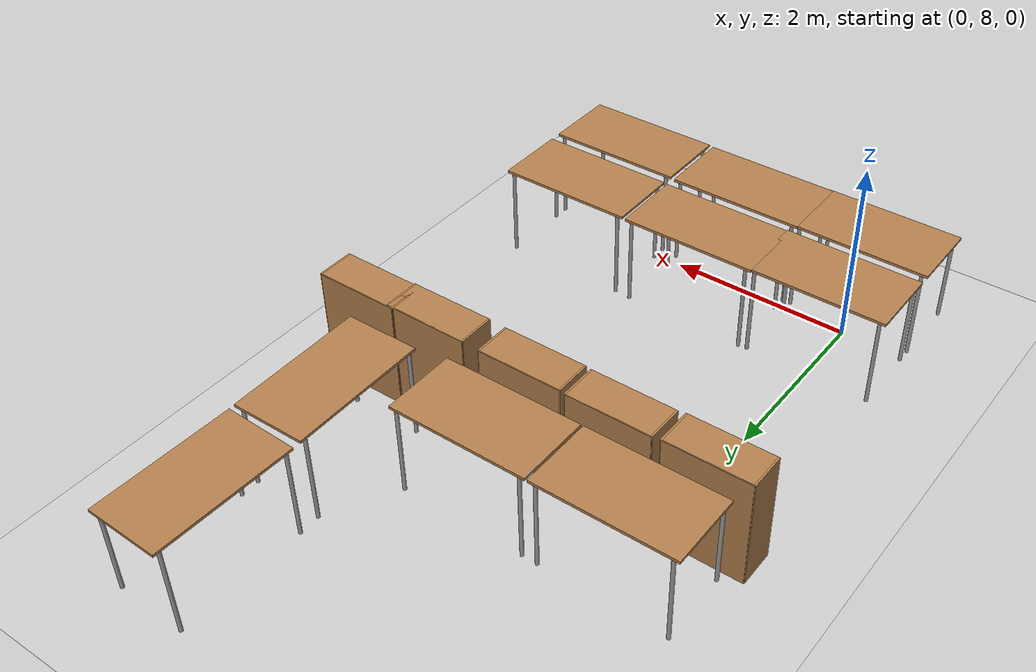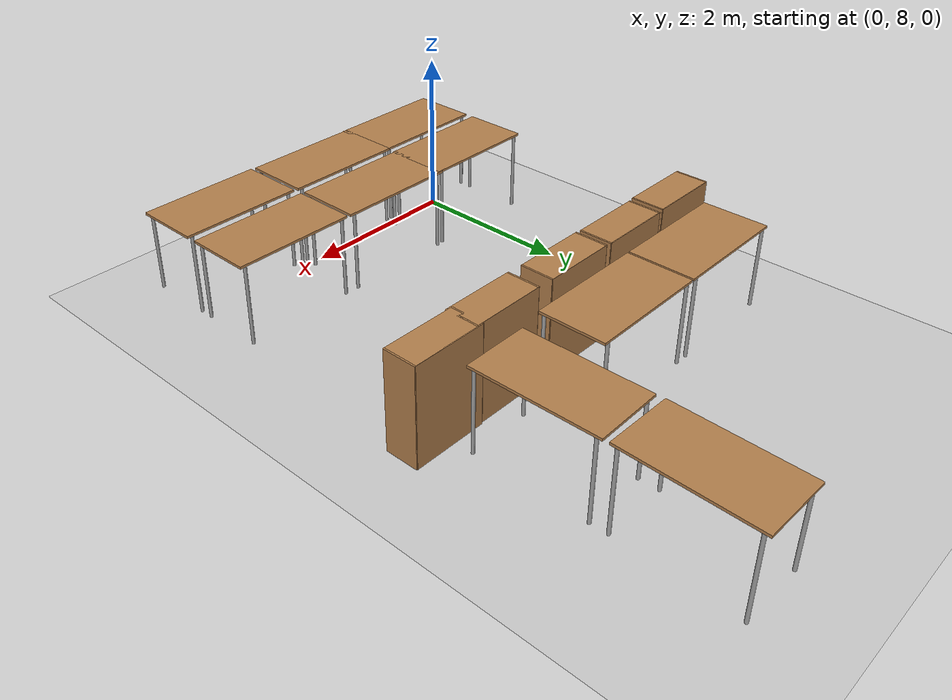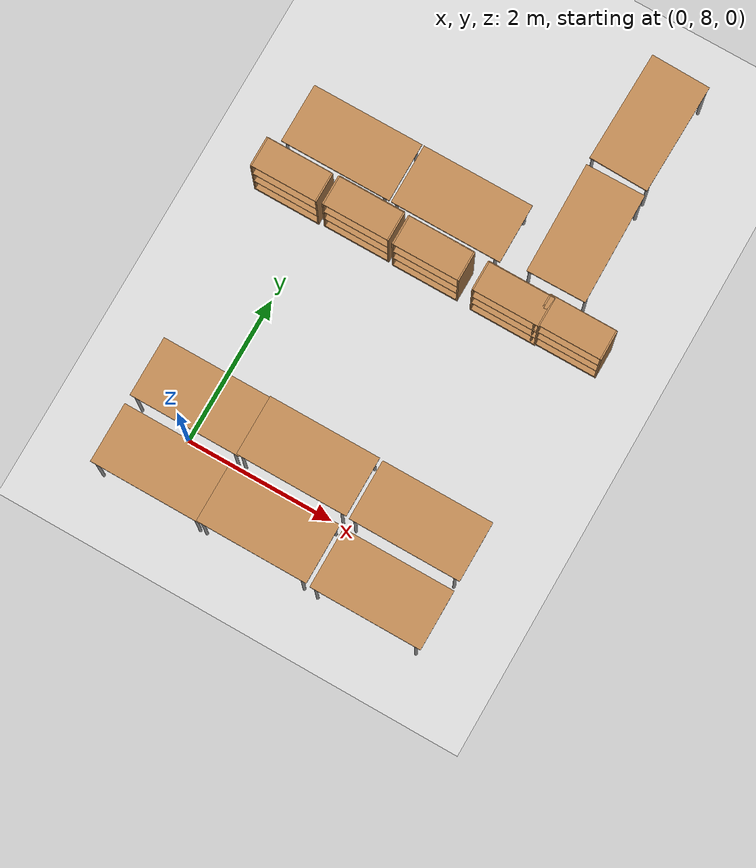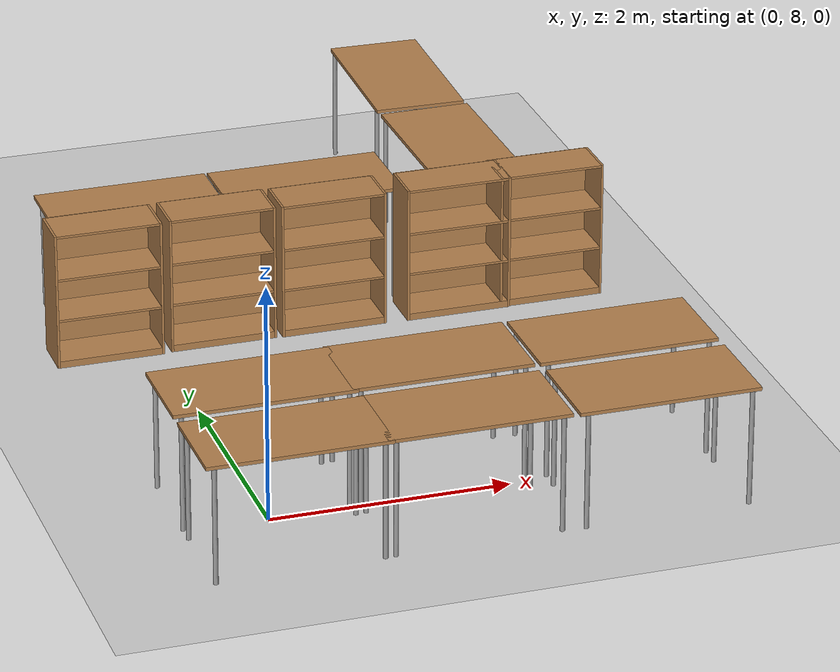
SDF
<sdf version="1.4">
 <world name="default">
  <model name="ground_plane">
   <static>1</static>
   <link name="link">
    <collision name="collision">
     <geometry><plane><normal>0 0 1</normal><size>100 100</size></plane></geometry>
     <surface><friction><ode><mu>100</mu><mu2>50</mu2></ode></friction></surface>
    </collision>
    <visual name="visual">
     <cast_shadows>0</cast_shadows>
     <geometry><plane><normal>0 0 1</normal><size>100 100</size></plane></geometry>
     <material>
      <script><uri>file://media/materials/scripts/gazebo.material</uri><name>Gazebo/Grey</name></script>
     </material>
    </visual>
    <velocity_decay><linear>0</linear><angular>0</angular></velocity_decay>
   </link>
  </model>
  <model name="bookshelf">
   <static>1</static>
   <link name="link">
    <inertial><mass>1</mass></inertial>
    <collision name="back">
     <pose>0 0.005 0.6 0 -0 0</pose>
     <geometry><box><size>0.9 0.01 1.2</size></box></geometry>
    </collision>
    <visual name="visual1">
     <pose>0 0.005 0.6 0 -0 0</pose>
     <geometry><box><size>0.9 0.01 1.2</size></box></geometry>
     <material>
      <script><uri>file://media/materials/scripts/gazebo.material</uri><name>Gazebo/Wood</name></script>
     </material>
    </visual>
    <collision name="left_side">
     <pose>0.45 -0.195 0.6 0 -0 0</pose>
     <geometry><box><size>0.02 0.4 1.2</size></box></geometry>
    </collision>
    <visual name="visual2">
     <pose>0.45 -0.195 0.6 0 -0 0</pose>
     <geometry><box><size>0.02 0.4 1.2</size></box></geometry>
     <material>
      <script><uri>file://media/materials/scripts/gazebo.material</uri><name>Gazebo/Wood</name></script>
     </material>
    </visual>
    <collision name="right_side">
     <pose>-0.45 -0.195 0.6 0 -0 0</pose>
     <geometry><box><size>0.02 0.4 1.2</size></box></geometry>
    </collision>
    <visual name="visual3">
     <pose>-0.45 -0.195 0.6 0 -0 0</pose>
     <geometry><box><size>0.02 0.4 1.2</size></box></geometry>
     <material>
      <script><uri>file://media/materials/scripts/gazebo.material</uri><name>Gazebo/Wood</name></script>
     </material>
    </visual>
    <collision name="bottom">
     <pose>0 -0.195 0.03 0 -0 0</pose>
     <geometry><box><size>0.88 0.4 0.06</size></box></geometry>
    </collision>
    <visual name="visual4">
     <pose>0 -0.195 0.03 0 -0 0</pose>
     <geometry><box><size>0.88 0.4 0.06</size></box></geometry>
     <material>
      <script><uri>file://media/materials/scripts/gazebo.material</uri><name>Gazebo/Wood</name></script>
     </material>
    </visual>
    <collision name="top">
     <pose>0 -0.195 1.19 0 -0 0</pose>
     <geometry><box><size>0.88 0.4 0.02</size></box></geometry>
    </collision>
    <visual name="visual5">
     <pose>0 -0.195 1.19 0 -0 0</pose>
     <geometry><box><size>0.88 0.4 0.02</size></box></geometry>
     <material>
      <script><uri>file://media/materials/scripts/gazebo.material</uri><name>Gazebo/Wood</name></script>
     </material>
    </visual>
    <collision name="low_shelf">
     <pose>0 -0.195 0.43 0 -0 0</pose>
     <geometry><box><size>0.88 0.4 0.02</size></box></geometry>
    </collision>
    <visual name="visual6">
     <pose>0 -0.195 0.43 0 -0 0</pose>
     <geometry><box><size>0.88 0.4 0.02</size></box></geometry>
     <material>
      <script><uri>file://media/materials/scripts/gazebo.material</uri><name>Gazebo/Wood</name></script>
     </material>
    </visual>
    <collision name="high_shelf">
     <pose>0 -0.195 0.8 0 -0 0</pose>
     <geometry><box><size>0.88 0.4 0.02</size></box></geometry>
    </collision>
    <visual name="visual7">
     <pose>0 -0.195 0.8 0 -0 0</pose>
     <geometry><box><size>0.88 0.4 0.02</size></box></geometry>
     <material>
      <script><uri>file://media/materials/scripts/gazebo.material</uri><name>Gazebo/Wood</name></script>
     </material>
    </visual>
    <velocity_decay><linear>0</linear><angular>0</angular></velocity_decay>
   </link>
   <pose>2.61965 11.5036 0 0 -0 0</pose>
  </model>
  <model name="table_16">
   <static>1</static>
   <link name="link">
    <collision name="surface">
     <pose>0 0 1 0 -0 0</pose>
     <geometry><box><size>1.5 0.8 0.03</size></box></geometry>
     <surface><friction><ode><mu>0.6</mu><mu2>0.6</mu2></ode></friction></surface>
    </collision>
    <visual name="visual1">
     <pose>0 0 1 0 -0 0</pose>
     <geometry><box><size>1.5 0.8 0.03</size></box></geometry>
     <material>
      <script><uri>file://media/materials/scripts/gazebo.material</uri><name>Gazebo/Wood</name></script>
     </material>
    </visual>
    <collision name="front_left_leg">
     <pose>0.68 0.38 0.5 0 -0 0</pose>
     <geometry><cylinder><radius>0.02</radius><length>1</length></cylinder></geometry>
    </collision>
    <visual name="front_left_leg">
     <pose>0.68 0.38 0.5 0 -0 0</pose>
     <geometry><cylinder><radius>0.02</radius><length>1</length></cylinder></geometry>
     <material>
      <script><uri>file://media/materials/scripts/gazebo.material</uri><name>Gazebo/Grey</name></script>
     </material>
    </visual>
    <collision name="front_right_leg">
     <pose>0.68 -0.38 0.5 0 -0 0</pose>
     <geometry><cylinder><radius>0.02</radius><length>1</length></cylinder></geometry>
    </collision>
    <visual name="front_right_leg">
     <pose>0.68 -0.38 0.5 0 -0 0</pose>
     <geometry><cylinder><radius>0.02</radius><length>1</length></cylinder></geometry>
     <material>
      <script><uri>file://media/materials/scripts/gazebo.material</uri><name>Gazebo/Grey</name></script>
     </material>
    </visual>
    <collision name="back_right_leg">
     <pose>-0.68 -0.38 0.5 0 -0 0</pose>
     <geometry><cylinder><radius>0.02</radius><length>1</length></cylinder></geometry>
    </collision>
    <visual name="back_right_leg">
     <pose>-0.68 -0.38 0.5 0 -0 0</pose>
     <geometry><cylinder><radius>0.02</radius><length>1</length></cylinder></geometry>
     <material>
      <script><uri>file://media/materials/scripts/gazebo.material</uri><name>Gazebo/Grey</name></script>
     </material>
    </visual>
    <collision name="back_left_leg">
     <pose>-0.68 0.38 0.5 0 -0 0</pose>
     <geometry><cylinder><radius>0.02</radius><length>1</length></cylinder></geometry>
    </collision>
    <visual name="back_left_leg">
     <pose>-0.68 0.38 0.5 0 -0 0</pose>
     <geometry><cylinder><radius>0.02</radius><length>1</length></cylinder></geometry>
     <material>
      <script><uri>file://media/materials/scripts/gazebo.material</uri><name>Gazebo/Grey</name></script>
     </material>
    </visual>
    <velocity_decay><linear>0</linear><angular>0</angular></velocity_decay>
   </link>
   <pose>3 7.49371 0 0 -0 0</pose>
  </model>
  <model name="table_17">
   <static>1</static>
   <link name="link">
    <collision name="surface">
     <pose>0 0 1 0 -0 0</pose>
     <geometry><box><size>1.5 0.8 0.03</size></box></geometry>
     <surface><friction><ode><mu>0.6</mu><mu2>0.6</mu2></ode></friction></surface>
    </collision>
    <visual name="visual1">
     <pose>0 0 1 0 -0 0</pose>
     <geometry><box><size>1.5 0.8 0.03</size></box></geometry>
     <material>
      <script><uri>file://media/materials/scripts/gazebo.material</uri><name>Gazebo/Wood</name></script>
     </material>
    </visual>
    <collision name="front_left_leg">
     <pose>0.68 0.38 0.5 0 -0 0</pose>
     <geometry><cylinder><radius>0.02</radius><length>1</length></cylinder></geometry>
    </collision>
    <visual name="front_left_leg">
     <pose>0.68 0.38 0.5 0 -0 0</pose>
     <geometry><cylinder><radius>0.02</radius><length>1</length></cylinder></geometry>
     <material>
      <script><uri>file://media/materials/scripts/gazebo.material</uri><name>Gazebo/Grey</name></script>
     </material>
    </visual>
    <collision name="front_right_leg">
     <pose>0.68 -0.38 0.5 0 -0 0</pose>
     <geometry><cylinder><radius>0.02</radius><length>1</length></cylinder></geometry>
    </collision>
    <visual name="front_right_leg">
     <pose>0.68 -0.38 0.5 0 -0 0</pose>
     <geometry><cylinder><radius>0.02</radius><length>1</length></cylinder></geometry>
     <material>
      <script><uri>file://media/materials/scripts/gazebo.material</uri><name>Gazebo/Grey</name></script>
     </material>
    </visual>
    <collision name="back_right_leg">
     <pose>-0.68 -0.38 0.5 0 -0 0</pose>
     <geometry><cylinder><radius>0.02</radius><length>1</length></cylinder></geometry>
    </collision>
    <visual name="back_right_leg">
     <pose>-0.68 -0.38 0.5 0 -0 0</pose>
     <geometry><cylinder><radius>0.02</radius><length>1</length></cylinder></geometry>
     <material>
      <script><uri>file://media/materials/scripts/gazebo.material</uri><name>Gazebo/Grey</name></script>
     </material>
    </visual>
    <collision name="back_left_leg">
     <pose>-0.68 0.38 0.5 0 -0 0</pose>
     <geometry><cylinder><radius>0.02</radius><length>1</length></cylinder></geometry>
    </collision>
    <visual name="back_left_leg">
     <pose>-0.68 0.38 0.5 0 -0 0</pose>
     <geometry><cylinder><radius>0.02</radius><length>1</length></cylinder></geometry>
     <material>
      <script><uri>file://media/materials/scripts/gazebo.material</uri><name>Gazebo/Grey</name></script>
     </material>
    </visual>
    <velocity_decay><linear>0</linear><angular>0</angular></velocity_decay>
   </link>
   <pose>1.44687 7.50858 0 0 -0 0</pose>
  </model>
  <model name="table_18">
   <static>1</static>
   <link name="link">
    <collision name="surface">
     <pose>0 0 1 0 -0 0</pose>
     <geometry><box><size>1.5 0.8 0.03</size></box></geometry>
     <surface><friction><ode><mu>0.6</mu><mu2>0.6</mu2></ode></friction></surface>
    </collision>
    <visual name="visual1">
     <pose>0 0 1 0 -0 0</pose>
     <geometry><box><size>1.5 0.8 0.03</size></box></geometry>
     <material>
      <script><uri>file://media/materials/scripts/gazebo.material</uri><name>Gazebo/Wood</name></script>
     </material>
    </visual>
    <collision name="front_left_leg">
     <pose>0.68 0.38 0.5 0 -0 0</pose>
     <geometry><cylinder><radius>0.02</radius><length>1</length></cylinder></geometry>
    </collision>
    <visual name="front_left_leg">
     <pose>0.68 0.38 0.5 0 -0 0</pose>
     <geometry><cylinder><radius>0.02</radius><length>1</length></cylinder></geometry>
     <material>
      <script><uri>file://media/materials/scripts/gazebo.material</uri><name>Gazebo/Grey</name></script>
     </material>
    </visual>
    <collision name="front_right_leg">
     <pose>0.68 -0.38 0.5 0 -0 0</pose>
     <geometry><cylinder><radius>0.02</radius><length>1</length></cylinder></geometry>
    </collision>
    <visual name="front_right_leg">
     <pose>0.68 -0.38 0.5 0 -0 0</pose>
     <geometry><cylinder><radius>0.02</radius><length>1</length></cylinder></geometry>
     <material>
      <script><uri>file://media/materials/scripts/gazebo.material</uri><name>Gazebo/Grey</name></script>
     </material>
    </visual>
    <collision name="back_right_leg">
     <pose>-0.68 -0.38 0.5 0 -0 0</pose>
     <geometry><cylinder><radius>0.02</radius><length>1</length></cylinder></geometry>
    </collision>
    <visual name="back_right_leg">
     <pose>-0.68 -0.38 0.5 0 -0 0</pose>
     <geometry><cylinder><radius>0.02</radius><length>1</length></cylinder></geometry>
     <material>
      <script><uri>file://media/materials/scripts/gazebo.material</uri><name>Gazebo/Grey</name></script>
     </material>
    </visual>
    <collision name="back_left_leg">
     <pose>-0.68 0.38 0.5 0 -0 0</pose>
     <geometry><cylinder><radius>0.02</radius><length>1</length></cylinder></geometry>
    </collision>
    <visual name="back_left_leg">
     <pose>-0.68 0.38 0.5 0 -0 0</pose>
     <geometry><cylinder><radius>0.02</radius><length>1</length></cylinder></geometry>
     <material>
      <script><uri>file://media/materials/scripts/gazebo.material</uri><name>Gazebo/Grey</name></script>
     </material>
    </visual>
    <velocity_decay><linear>0</linear><angular>0</angular></velocity_decay>
   </link>
   <pose>0 7.50114 0 0 -0 0</pose>
  </model>
  <model name="table_19">
   <static>1</static>
   <link name="link">
    <collision name="surface">
     <pose>0 0 1 0 -0 0</pose>
     <geometry><box><size>1.5 0.8 0.03</size></box></geometry>
     <surface><friction><ode><mu>0.6</mu><mu2>0.6</mu2></ode></friction></surface>
    </collision>
    <visual name="visual1">
     <pose>0 0 1 0 -0 0</pose>
     <geometry><box><size>1.5 0.8 0.03</size></box></geometry>
     <material>
      <script><uri>file://media/materials/scripts/gazebo.material</uri><name>Gazebo/Wood</name></script>
     </material>
    </visual>
    <collision name="front_left_leg">
     <pose>0.68 0.38 0.5 0 -0 0</pose>
     <geometry><cylinder><radius>0.02</radius><length>1</length></cylinder></geometry>
    </collision>
    <visual name="front_left_leg">
     <pose>0.68 0.38 0.5 0 -0 0</pose>
     <geometry><cylinder><radius>0.02</radius><length>1</length></cylinder></geometry>
     <material>
      <script><uri>file://media/materials/scripts/gazebo.material</uri><name>Gazebo/Grey</name></script>
     </material>
    </visual>
    <collision name="front_right_leg">
     <pose>0.68 -0.38 0.5 0 -0 0</pose>
     <geometry><cylinder><radius>0.02</radius><length>1</length></cylinder></geometry>
    </collision>
    <visual name="front_right_leg">
     <pose>0.68 -0.38 0.5 0 -0 0</pose>
     <geometry><cylinder><radius>0.02</radius><length>1</length></cylinder></geometry>
     <material>
      <script><uri>file://media/materials/scripts/gazebo.material</uri><name>Gazebo/Grey</name></script>
     </material>
    </visual>
    <collision name="back_right_leg">
     <pose>-0.68 -0.38 0.5 0 -0 0</pose>
     <geometry><cylinder><radius>0.02</radius><length>1</length></cylinder></geometry>
    </collision>
    <visual name="back_right_leg">
     <pose>-0.68 -0.38 0.5 0 -0 0</pose>
     <geometry><cylinder><radius>0.02</radius><length>1</length></cylinder></geometry>
     <material>
      <script><uri>file://media/materials/scripts/gazebo.material</uri><name>Gazebo/Grey</name></script>
     </material>
    </visual>
    <collision name="back_left_leg">
     <pose>-0.68 0.38 0.5 0 -0 0</pose>
     <geometry><cylinder><radius>0.02</radius><length>1</length></cylinder></geometry>
    </collision>
    <visual name="back_left_leg">
     <pose>-0.68 0.38 0.5 0 -0 0</pose>
     <geometry><cylinder><radius>0.02</radius><length>1</length></cylinder></geometry>
     <material>
      <script><uri>file://media/materials/scripts/gazebo.material</uri><name>Gazebo/Grey</name></script>
     </material>
    </visual>
    <velocity_decay><linear>0</linear><angular>0</angular></velocity_decay>
   </link>
   <pose>3 8.42263 0 0 -0 0</pose>
  </model>
  <model name="table_20">
   <static>1</static>
   <link name="link">
    <collision name="surface">
     <pose>0 0 1 0 -0 0</pose>
     <geometry><box><size>1.5 0.8 0.03</size></box></geometry>
     <surface><friction><ode><mu>0.6</mu><mu2>0.6</mu2></ode></friction></surface>
    </collision>
    <visual name="visual1">
     <pose>0 0 1 0 -0 0</pose>
     <geometry><box><size>1.5 0.8 0.03</size></box></geometry>
     <material>
      <script><uri>file://media/materials/scripts/gazebo.material</uri><name>Gazebo/Wood</name></script>
     </material>
    </visual>
    <collision name="front_left_leg">
     <pose>0.68 0.38 0.5 0 -0 0</pose>
     <geometry><cylinder><radius>0.02</radius><length>1</length></cylinder></geometry>
    </collision>
    <visual name="front_left_leg">
     <pose>0.68 0.38 0.5 0 -0 0</pose>
     <geometry><cylinder><radius>0.02</radius><length>1</length></cylinder></geometry>
     <material>
      <script><uri>file://media/materials/scripts/gazebo.material</uri><name>Gazebo/Grey</name></script>
     </material>
    </visual>
    <collision name="front_right_leg">
     <pose>0.68 -0.38 0.5 0 -0 0</pose>
     <geometry><cylinder><radius>0.02</radius><length>1</length></cylinder></geometry>
    </collision>
    <visual name="front_right_leg">
     <pose>0.68 -0.38 0.5 0 -0 0</pose>
     <geometry><cylinder><radius>0.02</radius><length>1</length></cylinder></geometry>
     <material>
      <script><uri>file://media/materials/scripts/gazebo.material</uri><name>Gazebo/Grey</name></script>
     </material>
    </visual>
    <collision name="back_right_leg">
     <pose>-0.68 -0.38 0.5 0 -0 0</pose>
     <geometry><cylinder><radius>0.02</radius><length>1</length></cylinder></geometry>
    </collision>
    <visual name="back_right_leg">
     <pose>-0.68 -0.38 0.5 0 -0 0</pose>
     <geometry><cylinder><radius>0.02</radius><length>1</length></cylinder></geometry>
     <material>
      <script><uri>file://media/materials/scripts/gazebo.material</uri><name>Gazebo/Grey</name></script>
     </material>
    </visual>
    <collision name="back_left_leg">
     <pose>-0.68 0.38 0.5 0 -0 0</pose>
     <geometry><cylinder><radius>0.02</radius><length>1</length></cylinder></geometry>
    </collision>
    <visual name="back_left_leg">
     <pose>-0.68 0.38 0.5 0 -0 0</pose>
     <geometry><cylinder><radius>0.02</radius><length>1</length></cylinder></geometry>
     <material>
      <script><uri>file://media/materials/scripts/gazebo.material</uri><name>Gazebo/Grey</name></script>
     </material>
    </visual>
    <velocity_decay><linear>0</linear><angular>0</angular></velocity_decay>
   </link>
   <pose>1.45613 8.43209 0 0 -0 0</pose>
  </model>
  <model name="table_21">
   <static>1</static>
   <link name="link">
    <collision name="surface">
     <pose>0 0 1 0 -0 0</pose>
     <geometry><box><size>1.5 0.8 0.03</size></box></geometry>
     <surface><friction><ode><mu>0.6</mu><mu2>0.6</mu2></ode></friction></surface>
    </collision>
    <visual name="visual1">
     <pose>0 0 1 0 -0 0</pose>
     <geometry><box><size>1.5 0.8 0.03</size></box></geometry>
     <material>
      <script><uri>file://media/materials/scripts/gazebo.material</uri><name>Gazebo/Wood</name></script>
     </material>
    </visual>
    <collision name="front_left_leg">
     <pose>0.68 0.38 0.5 0 -0 0</pose>
     <geometry><cylinder><radius>0.02</radius><length>1</length></cylinder></geometry>
    </collision>
    <visual name="front_left_leg">
     <pose>0.68 0.38 0.5 0 -0 0</pose>
     <geometry><cylinder><radius>0.02</radius><length>1</length></cylinder></geometry>
     <material>
      <script><uri>file://media/materials/scripts/gazebo.material</uri><name>Gazebo/Grey</name></script>
     </material>
    </visual>
    <collision name="front_right_leg">
     <pose>0.68 -0.38 0.5 0 -0 0</pose>
     <geometry><cylinder><radius>0.02</radius><length>1</length></cylinder></geometry>
    </collision>
    <visual name="front_right_leg">
     <pose>0.68 -0.38 0.5 0 -0 0</pose>
     <geometry><cylinder><radius>0.02</radius><length>1</length></cylinder></geometry>
     <material>
      <script><uri>file://media/materials/scripts/gazebo.material</uri><name>Gazebo/Grey</name></script>
     </material>
    </visual>
    <collision name="back_right_leg">
     <pose>-0.68 -0.38 0.5 0 -0 0</pose>
     <geometry><cylinder><radius>0.02</radius><length>1</length></cylinder></geometry>
    </collision>
    <visual name="back_right_leg">
     <pose>-0.68 -0.38 0.5 0 -0 0</pose>
     <geometry><cylinder><radius>0.02</radius><length>1</length></cylinder></geometry>
     <material>
      <script><uri>file://media/materials/scripts/gazebo.material</uri><name>Gazebo/Grey</name></script>
     </material>
    </visual>
    <collision name="back_left_leg">
     <pose>-0.68 0.38 0.5 0 -0 0</pose>
     <geometry><cylinder><radius>0.02</radius><length>1</length></cylinder></geometry>
    </collision>
    <visual name="back_left_leg">
     <pose>-0.68 0.38 0.5 0 -0 0</pose>
     <geometry><cylinder><radius>0.02</radius><length>1</length></cylinder></geometry>
     <material>
      <script><uri>file://media/materials/scripts/gazebo.material</uri><name>Gazebo/Grey</name></script>
     </material>
    </visual>
    <velocity_decay><linear>0</linear><angular>0</angular></velocity_decay>
   </link>
   <pose>0 8.41879 0 0 -0 0</pose>
  </model>
  <model name="bookshelf_0">
   <static>1</static>
   <link name="link">
    <inertial><mass>1</mass></inertial>
    <collision name="back">
     <pose>0 0.005 0.6 0 -0 0</pose>
     <geometry><box><size>0.9 0.01 1.2</size></box></geometry>
    </collision>
    <visual name="visual1">
     <pose>0 0.005 0.6 0 -0 0</pose>
     <geometry><box><size>0.9 0.01 1.2</size></box></geometry>
     <material>
      <script><uri>file://media/materials/scripts/gazebo.material</uri><name>Gazebo/Wood</name></script>
     </material>
    </visual>
    <collision name="left_side">
     <pose>0.45 -0.195 0.6 0 -0 0</pose>
     <geometry><box><size>0.02 0.4 1.2</size></box></geometry>
    </collision>
    <visual name="visual2">
     <pose>0.45 -0.195 0.6 0 -0 0</pose>
     <geometry><box><size>0.02 0.4 1.2</size></box></geometry>
     <material>
      <script><uri>file://media/materials/scripts/gazebo.material</uri><name>Gazebo/Wood</name></script>
     </material>
    </visual>
    <collision name="right_side">
     <pose>-0.45 -0.195 0.6 0 -0 0</pose>
     <geometry><box><size>0.02 0.4 1.2</size></box></geometry>
    </collision>
    <visual name="visual3">
     <pose>-0.45 -0.195 0.6 0 -0 0</pose>
     <geometry><box><size>0.02 0.4 1.2</size></box></geometry>
     <material>
      <script><uri>file://media/materials/scripts/gazebo.material</uri><name>Gazebo/Wood</name></script>
     </material>
    </visual>
    <collision name="bottom">
     <pose>0 -0.195 0.03 0 -0 0</pose>
     <geometry><box><size>0.88 0.4 0.06</size></box></geometry>
    </collision>
    <visual name="visual4">
     <pose>0 -0.195 0.03 0 -0 0</pose>
     <geometry><box><size>0.88 0.4 0.06</size></box></geometry>
     <material>
      <script><uri>file://media/materials/scripts/gazebo.material</uri><name>Gazebo/Wood</name></script>
     </material>
    </visual>
    <collision name="top">
     <pose>0 -0.195 1.19 0 -0 0</pose>
     <geometry><box><size>0.88 0.4 0.02</size></box></geometry>
    </collision>
    <visual name="visual5">
     <pose>0 -0.195 1.19 0 -0 0</pose>
     <geometry><box><size>0.88 0.4 0.02</size></box></geometry>
     <material>
      <script><uri>file://media/materials/scripts/gazebo.material</uri><name>Gazebo/Wood</name></script>
     </material>
    </visual>
    <collision name="low_shelf">
     <pose>0 -0.195 0.43 0 -0 0</pose>
     <geometry><box><size>0.88 0.4 0.02</size></box></geometry>
    </collision>
    <visual name="visual6">
     <pose>0 -0.195 0.43 0 -0 0</pose>
     <geometry><box><size>0.88 0.4 0.02</size></box></geometry>
     <material>
      <script><uri>file://media/materials/scripts/gazebo.material</uri><name>Gazebo/Wood</name></script>
     </material>
    </visual>
    <collision name="high_shelf">
     <pose>0 -0.195 0.8 0 -0 0</pose>
     <geometry><box><size>0.88 0.4 0.02</size></box></geometry>
    </collision>
    <visual name="visual7">
     <pose>0 -0.195 0.8 0 -0 0</pose>
     <geometry><box><size>0.88 0.4 0.02</size></box></geometry>
     <material>
      <script><uri>file://media/materials/scripts/gazebo.material</uri><name>Gazebo/Wood</name></script>
     </material>
    </visual>
    <velocity_decay><linear>0</linear><angular>0</angular></velocity_decay>
   </link>
   <pose>1.51839 11.5154 0 0 -0 0</pose>
  </model>
  <model name="bookshelf_1">
   <static>1</static>
   <link name="link">
    <inertial><mass>1</mass></inertial>
    <collision name="back">
     <pose>0 0.005 0.6 0 -0 0</pose>
     <geometry><box><size>0.9 0.01 1.2</size></box></geometry>
    </collision>
    <visual name="visual1">
     <pose>0 0.005 0.6 0 -0 0</pose>
     <geometry><box><size>0.9 0.01 1.2</size></box></geometry>
     <material>
      <script><uri>file://media/materials/scripts/gazebo.material</uri><name>Gazebo/Wood</name></script>
     </material>
    </visual>
    <collision name="left_side">
     <pose>0.45 -0.195 0.6 0 -0 0</pose>
     <geometry><box><size>0.02 0.4 1.2</size></box></geometry>
    </collision>
    <visual name="visual2">
     <pose>0.45 -0.195 0.6 0 -0 0</pose>
     <geometry><box><size>0.02 0.4 1.2</size></box></geometry>
     <material>
      <script><uri>file://media/materials/scripts/gazebo.material</uri><name>Gazebo/Wood</name></script>
     </material>
    </visual>
    <collision name="right_side">
     <pose>-0.45 -0.195 0.6 0 -0 0</pose>
     <geometry><box><size>0.02 0.4 1.2</size></box></geometry>
    </collision>
    <visual name="visual3">
     <pose>-0.45 -0.195 0.6 0 -0 0</pose>
     <geometry><box><size>0.02 0.4 1.2</size></box></geometry>
     <material>
      <script><uri>file://media/materials/scripts/gazebo.material</uri><name>Gazebo/Wood</name></script>
     </material>
    </visual>
    <collision name="bottom">
     <pose>0 -0.195 0.03 0 -0 0</pose>
     <geometry><box><size>0.88 0.4 0.06</size></box></geometry>
    </collision>
    <visual name="visual4">
     <pose>0 -0.195 0.03 0 -0 0</pose>
     <geometry><box><size>0.88 0.4 0.06</size></box></geometry>
     <material>
      <script><uri>file://media/materials/scripts/gazebo.material</uri><name>Gazebo/Wood</name></script>
     </material>
    </visual>
    <collision name="top">
     <pose>0 -0.195 1.19 0 -0 0</pose>
     <geometry><box><size>0.88 0.4 0.02</size></box></geometry>
    </collision>
    <visual name="visual5">
     <pose>0 -0.195 1.19 0 -0 0</pose>
     <geometry><box><size>0.88 0.4 0.02</size></box></geometry>
     <material>
      <script><uri>file://media/materials/scripts/gazebo.material</uri><name>Gazebo/Wood</name></script>
     </material>
    </visual>
    <collision name="low_shelf">
     <pose>0 -0.195 0.43 0 -0 0</pose>
     <geometry><box><size>0.88 0.4 0.02</size></box></geometry>
    </collision>
    <visual name="visual6">
     <pose>0 -0.195 0.43 0 -0 0</pose>
     <geometry><box><size>0.88 0.4 0.02</size></box></geometry>
     <material>
      <script><uri>file://media/materials/scripts/gazebo.material</uri><name>Gazebo/Wood</name></script>
     </material>
    </visual>
    <collision name="high_shelf">
     <pose>0 -0.195 0.8 0 -0 0</pose>
     <geometry><box><size>0.88 0.4 0.02</size></box></geometry>
    </collision>
    <visual name="visual7">
     <pose>0 -0.195 0.8 0 -0 0</pose>
     <geometry><box><size>0.88 0.4 0.02</size></box></geometry>
     <material>
      <script><uri>file://media/materials/scripts/gazebo.material</uri><name>Gazebo/Wood</name></script>
     </material>
    </visual>
    <velocity_decay><linear>0</linear><angular>0</angular></velocity_decay>
   </link>
   <pose>0.549809 11.5264 0 0 -0 0</pose>
  </model>
  <model name="bookshelf_2">
   <static>1</static>
   <link name="link">
    <inertial><mass>1</mass></inertial>
    <collision name="back">
     <pose>0 0.005 0.6 0 -0 0</pose>
     <geometry><box><size>0.9 0.01 1.2</size></box></geometry>
    </collision>
    <visual name="visual1">
     <pose>0 0.005 0.6 0 -0 0</pose>
     <geometry><box><size>0.9 0.01 1.2</size></box></geometry>
     <material>
      <script><uri>file://media/materials/scripts/gazebo.material</uri><name>Gazebo/Wood</name></script>
     </material>
    </visual>
    <collision name="left_side">
     <pose>0.45 -0.195 0.6 0 -0 0</pose>
     <geometry><box><size>0.02 0.4 1.2</size></box></geometry>
    </collision>
    <visual name="visual2">
     <pose>0.45 -0.195 0.6 0 -0 0</pose>
     <geometry><box><size>0.02 0.4 1.2</size></box></geometry>
     <material>
      <script><uri>file://media/materials/scripts/gazebo.material</uri><name>Gazebo/Wood</name></script>
     </material>
    </visual>
    <collision name="right_side">
     <pose>-0.45 -0.195 0.6 0 -0 0</pose>
     <geometry><box><size>0.02 0.4 1.2</size></box></geometry>
    </collision>
    <visual name="visual3">
     <pose>-0.45 -0.195 0.6 0 -0 0</pose>
     <geometry><box><size>0.02 0.4 1.2</size></box></geometry>
     <material>
      <script><uri>file://media/materials/scripts/gazebo.material</uri><name>Gazebo/Wood</name></script>
     </material>
    </visual>
    <collision name="bottom">
     <pose>0 -0.195 0.03 0 -0 0</pose>
     <geometry><box><size>0.88 0.4 0.06</size></box></geometry>
    </collision>
    <visual name="visual4">
     <pose>0 -0.195 0.03 0 -0 0</pose>
     <geometry><box><size>0.88 0.4 0.06</size></box></geometry>
     <material>
      <script><uri>file://media/materials/scripts/gazebo.material</uri><name>Gazebo/Wood</name></script>
     </material>
    </visual>
    <collision name="top">
     <pose>0 -0.195 1.19 0 -0 0</pose>
     <geometry><box><size>0.88 0.4 0.02</size></box></geometry>
    </collision>
    <visual name="visual5">
     <pose>0 -0.195 1.19 0 -0 0</pose>
     <geometry><box><size>0.88 0.4 0.02</size></box></geometry>
     <material>
      <script><uri>file://media/materials/scripts/gazebo.material</uri><name>Gazebo/Wood</name></script>
     </material>
    </visual>
    <collision name="low_shelf">
     <pose>0 -0.195 0.43 0 -0 0</pose>
     <geometry><box><size>0.88 0.4 0.02</size></box></geometry>
    </collision>
    <visual name="visual6">
     <pose>0 -0.195 0.43 0 -0 0</pose>
     <geometry><box><size>0.88 0.4 0.02</size></box></geometry>
     <material>
      <script><uri>file://media/materials/scripts/gazebo.material</uri><name>Gazebo/Wood</name></script>
     </material>
    </visual>
    <collision name="high_shelf">
     <pose>0 -0.195 0.8 0 -0 0</pose>
     <geometry><box><size>0.88 0.4 0.02</size></box></geometry>
    </collision>
    <visual name="visual7">
     <pose>0 -0.195 0.8 0 -0 0</pose>
     <geometry><box><size>0.88 0.4 0.02</size></box></geometry>
     <material>
      <script><uri>file://media/materials/scripts/gazebo.material</uri><name>Gazebo/Wood</name></script>
     </material>
    </visual>
    <velocity_decay><linear>0</linear><angular>0</angular></velocity_decay>
   </link>
   <pose>-0.434617 11.5111 0 0 -0 0</pose>
  </model>
  <model name="table_22">
   <static>1</static>
   <link name="link">
    <collision name="surface">
     <pose>0 0 1 0 -0 0</pose>
     <geometry><box><size>1.5 0.8 0.03</size></box></geometry>
     <surface><friction><ode><mu>0.6</mu><mu2>0.6</mu2></ode></friction></surface>
    </collision>
    <visual name="visual1">
     <pose>0 0 1 0 -0 0</pose>
     <geometry><box><size>1.5 0.8 0.03</size></box></geometry>
     <material>
      <script><uri>file://media/materials/scripts/gazebo.material</uri><name>Gazebo/Wood</name></script>
     </material>
    </visual>
    <collision name="front_left_leg">
     <pose>0.68 0.38 0.5 0 -0 0</pose>
     <geometry><cylinder><radius>0.02</radius><length>1</length></cylinder></geometry>
    </collision>
    <visual name="front_left_leg">
     <pose>0.68 0.38 0.5 0 -0 0</pose>
     <geometry><cylinder><radius>0.02</radius><length>1</length></cylinder></geometry>
     <material>
      <script><uri>file://media/materials/scripts/gazebo.material</uri><name>Gazebo/Grey</name></script>
     </material>
    </visual>
    <collision name="front_right_leg">
     <pose>0.68 -0.38 0.5 0 -0 0</pose>
     <geometry><cylinder><radius>0.02</radius><length>1</length></cylinder></geometry>
    </collision>
    <visual name="front_right_leg">
     <pose>0.68 -0.38 0.5 0 -0 0</pose>
     <geometry><cylinder><radius>0.02</radius><length>1</length></cylinder></geometry>
     <material>
      <script><uri>file://media/materials/scripts/gazebo.material</uri><name>Gazebo/Grey</name></script>
     </material>
    </visual>
    <collision name="back_right_leg">
     <pose>-0.68 -0.38 0.5 0 -0 0</pose>
     <geometry><cylinder><radius>0.02</radius><length>1</length></cylinder></geometry>
    </collision>
    <visual name="back_right_leg">
     <pose>-0.68 -0.38 0.5 0 -0 0</pose>
     <geometry><cylinder><radius>0.02</radius><length>1</length></cylinder></geometry>
     <material>
      <script><uri>file://media/materials/scripts/gazebo.material</uri><name>Gazebo/Grey</name></script>
     </material>
    </visual>
    <collision name="back_left_leg">
     <pose>-0.68 0.38 0.5 0 -0 0</pose>
     <geometry><cylinder><radius>0.02</radius><length>1</length></cylinder></geometry>
    </collision>
    <visual name="back_left_leg">
     <pose>-0.68 0.38 0.5 0 -0 0</pose>
     <geometry><cylinder><radius>0.02</radius><length>1</length></cylinder></geometry>
     <material>
      <script><uri>file://media/materials/scripts/gazebo.material</uri><name>Gazebo/Grey</name></script>
     </material>
    </visual>
    <velocity_decay><linear>0</linear><angular>0</angular></velocity_decay>
   </link>
   <pose>0 12 0 0 -0 0</pose>
  </model>
  <model name="table_23">
   <static>1</static>
   <link name="link">
    <collision name="surface">
     <pose>0 0 1 0 -0 0</pose>
     <geometry><box><size>1.5 0.8 0.03</size></box></geometry>
     <surface><friction><ode><mu>0.6</mu><mu2>0.6</mu2></ode></friction></surface>
    </collision>
    <visual name="visual1">
     <pose>0 0 1 0 -0 0</pose>
     <geometry><box><size>1.5 0.8 0.03</size></box></geometry>
     <material>
      <script><uri>file://media/materials/scripts/gazebo.material</uri><name>Gazebo/Wood</name></script>
     </material>
    </visual>
    <collision name="front_left_leg">
     <pose>0.68 0.38 0.5 0 -0 0</pose>
     <geometry><cylinder><radius>0.02</radius><length>1</length></cylinder></geometry>
    </collision>
    <visual name="front_left_leg">
     <pose>0.68 0.38 0.5 0 -0 0</pose>
     <geometry><cylinder><radius>0.02</radius><length>1</length></cylinder></geometry>
     <material>
      <script><uri>file://media/materials/scripts/gazebo.material</uri><name>Gazebo/Grey</name></script>
     </material>
    </visual>
    <collision name="front_right_leg">
     <pose>0.68 -0.38 0.5 0 -0 0</pose>
     <geometry><cylinder><radius>0.02</radius><length>1</length></cylinder></geometry>
    </collision>
    <visual name="front_right_leg">
     <pose>0.68 -0.38 0.5 0 -0 0</pose>
     <geometry><cylinder><radius>0.02</radius><length>1</length></cylinder></geometry>
     <material>
      <script><uri>file://media/materials/scripts/gazebo.material</uri><name>Gazebo/Grey</name></script>
     </material>
    </visual>
    <collision name="back_right_leg">
     <pose>-0.68 -0.38 0.5 0 -0 0</pose>
     <geometry><cylinder><radius>0.02</radius><length>1</length></cylinder></geometry>
    </collision>
    <visual name="back_right_leg">
     <pose>-0.68 -0.38 0.5 0 -0 0</pose>
     <geometry><cylinder><radius>0.02</radius><length>1</length></cylinder></geometry>
     <material>
      <script><uri>file://media/materials/scripts/gazebo.material</uri><name>Gazebo/Grey</name></script>
     </material>
    </visual>
    <collision name="back_left_leg">
     <pose>-0.68 0.38 0.5 0 -0 0</pose>
     <geometry><cylinder><radius>0.02</radius><length>1</length></cylinder></geometry>
    </collision>
    <visual name="back_left_leg">
     <pose>-0.68 0.38 0.5 0 -0 0</pose>
     <geometry><cylinder><radius>0.02</radius><length>1</length></cylinder></geometry>
     <material>
      <script><uri>file://media/materials/scripts/gazebo.material</uri><name>Gazebo/Grey</name></script>
     </material>
    </visual>
    <velocity_decay><linear>0</linear><angular>0</angular></velocity_decay>
   </link>
   <pose>1.52689 12 0 0 -0 0</pose>
  </model>
  <model name="table_25">
   <static>1</static>
   <link name="link">
    <collision name="surface">
     <pose>0 0 1 0 -0 0</pose>
     <geometry><box><size>1.5 0.8 0.03</size></box></geometry>
     <surface><friction><ode><mu>0.6</mu><mu2>0.6</mu2></ode></friction></surface>
    </collision>
    <visual name="visual1">
     <pose>0 0 1 0 -0 0</pose>
     <geometry><box><size>1.5 0.8 0.03</size></box></geometry>
     <material>
      <script><uri>file://media/materials/scripts/gazebo.material</uri><name>Gazebo/Wood</name></script>
     </material>
    </visual>
    <collision name="front_left_leg">
     <pose>0.68 0.38 0.5 0 -0 0</pose>
     <geometry><cylinder><radius>0.02</radius><length>1</length></cylinder></geometry>
    </collision>
    <visual name="front_left_leg">
     <pose>0.68 0.38 0.5 0 -0 0</pose>
     <geometry><cylinder><radius>0.02</radius><length>1</length></cylinder></geometry>
     <material>
      <script><uri>file://media/materials/scripts/gazebo.material</uri><name>Gazebo/Grey</name></script>
     </material>
    </visual>
    <collision name="front_right_leg">
     <pose>0.68 -0.38 0.5 0 -0 0</pose>
     <geometry><cylinder><radius>0.02</radius><length>1</length></cylinder></geometry>
    </collision>
    <visual name="front_right_leg">
     <pose>0.68 -0.38 0.5 0 -0 0</pose>
     <geometry><cylinder><radius>0.02</radius><length>1</length></cylinder></geometry>
     <material>
      <script><uri>file://media/materials/scripts/gazebo.material</uri><name>Gazebo/Grey</name></script>
     </material>
    </visual>
    <collision name="back_right_leg">
     <pose>-0.68 -0.38 0.5 0 -0 0</pose>
     <geometry><cylinder><radius>0.02</radius><length>1</length></cylinder></geometry>
    </collision>
    <visual name="back_right_leg">
     <pose>-0.68 -0.38 0.5 0 -0 0</pose>
     <geometry><cylinder><radius>0.02</radius><length>1</length></cylinder></geometry>
     <material>
      <script><uri>file://media/materials/scripts/gazebo.material</uri><name>Gazebo/Grey</name></script>
     </material>
    </visual>
    <collision name="back_left_leg">
     <pose>-0.68 0.38 0.5 0 -0 0</pose>
     <geometry><cylinder><radius>0.02</radius><length>1</length></cylinder></geometry>
    </collision>
    <visual name="back_left_leg">
     <pose>-0.68 0.38 0.5 0 -0 0</pose>
     <geometry><cylinder><radius>0.02</radius><length>1</length></cylinder></geometry>
     <material>
      <script><uri>file://media/materials/scripts/gazebo.material</uri><name>Gazebo/Grey</name></script>
     </material>
    </visual>
    <velocity_decay><linear>0</linear><angular>0</angular></velocity_decay>
   </link>
   <pose>3 14 0 0 -0 1.54602</pose>
  </model>
  <model name="table_26">
   <static>1</static>
   <link name="link">
    <collision name="surface">
     <pose>0 0 1 0 -0 0</pose>
     <geometry><box><size>1.5 0.8 0.03</size></box></geometry>
     <surface><friction><ode><mu>0.6</mu><mu2>0.6</mu2></ode></friction></surface>
    </collision>
    <visual name="visual1">
     <pose>0 0 1 0 -0 0</pose>
     <geometry><box><size>1.5 0.8 0.03</size></box></geometry>
     <material>
      <script><uri>file://media/materials/scripts/gazebo.material</uri><name>Gazebo/Wood</name></script>
     </material>
    </visual>
    <collision name="front_left_leg">
     <pose>0.68 0.38 0.5 0 -0 0</pose>
     <geometry><cylinder><radius>0.02</radius><length>1</length></cylinder></geometry>
    </collision>
    <visual name="front_left_leg">
     <pose>0.68 0.38 0.5 0 -0 0</pose>
     <geometry><cylinder><radius>0.02</radius><length>1</length></cylinder></geometry>
     <material>
      <script><uri>file://media/materials/scripts/gazebo.material</uri><name>Gazebo/Grey</name></script>
     </material>
    </visual>
    <collision name="front_right_leg">
     <pose>0.68 -0.38 0.5 0 -0 0</pose>
     <geometry><cylinder><radius>0.02</radius><length>1</length></cylinder></geometry>
    </collision>
    <visual name="front_right_leg">
     <pose>0.68 -0.38 0.5 0 -0 0</pose>
     <geometry><cylinder><radius>0.02</radius><length>1</length></cylinder></geometry>
     <material>
      <script><uri>file://media/materials/scripts/gazebo.material</uri><name>Gazebo/Grey</name></script>
     </material>
    </visual>
    <collision name="back_right_leg">
     <pose>-0.68 -0.38 0.5 0 -0 0</pose>
     <geometry><cylinder><radius>0.02</radius><length>1</length></cylinder></geometry>
    </collision>
    <visual name="back_right_leg">
     <pose>-0.68 -0.38 0.5 0 -0 0</pose>
     <geometry><cylinder><radius>0.02</radius><length>1</length></cylinder></geometry>
     <material>
      <script><uri>file://media/materials/scripts/gazebo.material</uri><name>Gazebo/Grey</name></script>
     </material>
    </visual>
    <collision name="back_left_leg">
     <pose>-0.68 0.38 0.5 0 -0 0</pose>
     <geometry><cylinder><radius>0.02</radius><length>1</length></cylinder></geometry>
    </collision>
    <visual name="back_left_leg">
     <pose>-0.68 0.38 0.5 0 -0 0</pose>
     <geometry><cylinder><radius>0.02</radius><length>1</length></cylinder></geometry>
     <material>
      <script><uri>file://media/materials/scripts/gazebo.material</uri><name>Gazebo/Grey</name></script>
     </material>
    </visual>
    <velocity_decay><linear>0</linear><angular>0</angular></velocity_decay>
   </link>
   <pose>2.99562 12.4228 0 0 -0 1.58115</pose>
  </model>
  <model name="bookshelf_3">
   <static>1</static>
   <link name="link">
    <inertial><mass>1</mass></inertial>
    <collision name="back">
     <pose>0 0.005 0.6 0 -0 0</pose>
     <geometry><box><size>0.9 0.01 1.2</size></box></geometry>
    </collision>
    <visual name="visual1">
     <pose>0 0.005 0.6 0 -0 0</pose>
     <geometry><box><size>0.9 0.01 1.2</size></box></geometry>
     <material>
      <script><uri>file://media/materials/scripts/gazebo.material</uri><name>Gazebo/Wood</name></script>
     </material>
    </visual>
    <collision name="left_side">
     <pose>0.45 -0.195 0.6 0 -0 0</pose>
     <geometry><box><size>0.02 0.4 1.2</size></box></geometry>
    </collision>
    <visual name="visual2">
     <pose>0.45 -0.195 0.6 0 -0 0</pose>
     <geometry><box><size>0.02 0.4 1.2</size></box></geometry>
     <material>
      <script><uri>file://media/materials/scripts/gazebo.material</uri><name>Gazebo/Wood</name></script>
     </material>
    </visual>
    <collision name="right_side">
     <pose>-0.45 -0.195 0.6 0 -0 0</pose>
     <geometry><box><size>0.02 0.4 1.2</size></box></geometry>
    </collision>
    <visual name="visual3">
     <pose>-0.45 -0.195 0.6 0 -0 0</pose>
     <geometry><box><size>0.02 0.4 1.2</size></box></geometry>
     <material>
      <script><uri>file://media/materials/scripts/gazebo.material</uri><name>Gazebo/Wood</name></script>
     </material>
    </visual>
    <collision name="bottom">
     <pose>0 -0.195 0.03 0 -0 0</pose>
     <geometry><box><size>0.88 0.4 0.06</size></box></geometry>
    </collision>
    <visual name="visual4">
     <pose>0 -0.195 0.03 0 -0 0</pose>
     <geometry><box><size>0.88 0.4 0.06</size></box></geometry>
     <material>
      <script><uri>file://media/materials/scripts/gazebo.material</uri><name>Gazebo/Wood</name></script>
     </material>
    </visual>
    <collision name="top">
     <pose>0 -0.195 1.19 0 -0 0</pose>
     <geometry><box><size>0.88 0.4 0.02</size></box></geometry>
    </collision>
    <visual name="visual5">
     <pose>0 -0.195 1.19 0 -0 0</pose>
     <geometry><box><size>0.88 0.4 0.02</size></box></geometry>
     <material>
      <script><uri>file://media/materials/scripts/gazebo.material</uri><name>Gazebo/Wood</name></script>
     </material>
    </visual>
    <collision name="low_shelf">
     <pose>0 -0.195 0.43 0 -0 0</pose>
     <geometry><box><size>0.88 0.4 0.02</size></box></geometry>
    </collision>
    <visual name="visual6">
     <pose>0 -0.195 0.43 0 -0 0</pose>
     <geometry><box><size>0.88 0.4 0.02</size></box></geometry>
     <material>
      <script><uri>file://media/materials/scripts/gazebo.material</uri><name>Gazebo/Wood</name></script>
     </material>
    </visual>
    <collision name="high_shelf">
     <pose>0 -0.195 0.8 0 -0 0</pose>
     <geometry><box><size>0.88 0.4 0.02</size></box></geometry>
    </collision>
    <visual name="visual7">
     <pose>0 -0.195 0.8 0 -0 0</pose>
     <geometry><box><size>0.88 0.4 0.02</size></box></geometry>
     <material>
      <script><uri>file://media/materials/scripts/gazebo.material</uri><name>Gazebo/Wood</name></script>
     </material>
    </visual>
    <velocity_decay><linear>0</linear><angular>0</angular></velocity_decay>
   </link>
   <pose>3.45594 11.5178 0 0 -0 0</pose>
  </model>
 </world>
</sdf>
